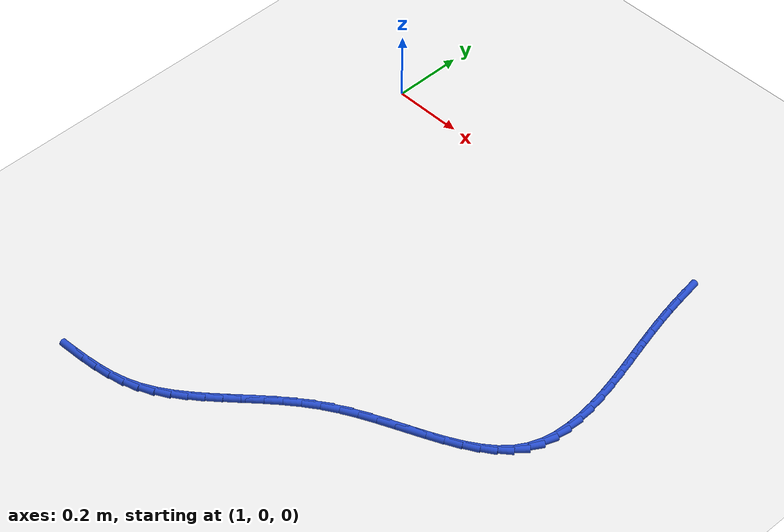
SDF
<sdf version="1.6">
 <world name="default">
  <model name="ground_plane">
   <static>1</static>
   <link name="link">
    <collision name="collision">
     <geometry><plane><normal>0 0 1</normal><size>100 100</size></plane></geometry>
     <surface><friction><ode><mu>100</mu><mu2>50</mu2></ode></friction></surface>
    </collision>
    <visual name="visual">
     <cast_shadows>0</cast_shadows>
     <geometry><plane><normal>0 0 1</normal><size>100 100</size></plane></geometry>
     <material>
      <script><uri>file://media/materials/scripts/gazebo.material</uri><name>Gazebo/WhiteGlow</name></script>
     </material>
    </visual>
   </link>
  </model>
  <model name="line">
   <link name="link_85">
    <pose>2.0417358698839037 -0.013176757162275163 0.01 0 1.57 -1.4171654546028096</pose>
    <collision name="collision">
     <geometry><cylinder><radius>0.01</radius><length>0.08</length></cylinder></geometry>
    </collision>
    <visual name="visual">
     <material>
      <script><name>Gazebo/Blue</name><uri>file://media/materials/scripts/gazebo.material</uri></script>
     </material>
     <geometry><cylinder><radius>0.01</radius><length>0.08</length></cylinder></geometry>
    </visual>
   </link>
   <link name="link_86">
    <pose>2.0482554024763844 -0.055278707813087594 0.01 0 1.57 -1.3909854404566688</pose>
    <collision name="collision">
     <geometry><cylinder><radius>0.01</radius><length>0.08</length></cylinder></geometry>
    </collision>
    <visual name="visual">
     <material>
      <script><name>Gazebo/Blue</name><uri>file://media/materials/scripts/gazebo.material</uri></script>
     </material>
     <geometry><cylinder><radius>0.01</radius><length>0.08</length></cylinder></geometry>
    </visual>
   </link>
   <link name="link_87">
    <pose>2.055981872725024 -0.09778458570475346 0.01 0 1.57 -1.3674098730765814</pose>
    <collision name="collision">
     <geometry><cylinder><radius>0.01</radius><length>0.08</length></cylinder></geometry>
    </collision>
    <visual name="visual">
     <material>
      <script><name>Gazebo/Blue</name><uri>file://media/materials/scripts/gazebo.material</uri></script>
     </material>
     <geometry><cylinder><radius>0.01</radius><length>0.08</length></cylinder></geometry>
    </visual>
   </link>
   <link name="link_88">
    <pose>2.064905274543462 -0.14105206511298232 0.01 0 1.57 -1.3468393014528395</pose>
    <collision name="collision">
     <geometry><cylinder><radius>0.01</radius><length>0.08</length></cylinder></geometry>
    </collision>
    <visual name="visual">
     <material>
      <script><name>Gazebo/Blue</name><uri>file://media/materials/scripts/gazebo.material</uri></script>
     </material>
     <geometry><cylinder><radius>0.01</radius><length>0.08</length></cylinder></geometry>
    </visual>
   </link>
   <link name="link_89">
    <pose>2.075015601845341 -0.1854388203134849 0.01 0 1.57 -1.3303079527624582</pose>
    <collision name="collision">
     <geometry><cylinder><radius>0.01</radius><length>0.08</length></cylinder></geometry>
    </collision>
    <visual name="visual">
     <material>
      <script><name>Gazebo/Blue</name><uri>file://media/materials/scripts/gazebo.material</uri></script>
     </material>
     <geometry><cylinder><radius>0.01</radius><length>0.08</length></cylinder></geometry>
    </visual>
   </link>
   <link name="link_90">
    <pose>2.0862450507410677 -0.23122949877129095 0.01 0 1.57 -1.3234082910188119</pose>
    <collision name="collision">
     <geometry><cylinder><radius>0.01</radius><length>0.08</length></cylinder></geometry>
    </collision>
    <visual name="visual">
     <material>
      <script><name>Gazebo/Blue</name><uri>file://media/materials/scripts/gazebo.material</uri></script>
     </material>
     <geometry><cylinder><radius>0.01</radius><length>0.08</length></cylinder></geometry>
    </visual>
   </link>
   <link name="link_91">
    <pose>2.098100880559092 -0.27817184557468294 0.01 0 1.57 -1.3278091539093344</pose>
    <collision name="collision">
     <geometry><cylinder><radius>0.01</radius><length>0.08</length></cylinder></geometry>
    </collision>
    <visual name="visual">
     <material>
      <script><name>Gazebo/Blue</name><uri>file://media/materials/scripts/gazebo.material</uri></script>
     </material>
     <geometry><cylinder><radius>0.01</radius><length>0.08</length></cylinder></geometry>
    </visual>
   </link>
   <link name="link_92">
    <pose>2.1099007599251283 -0.32577406030016526 0.01 0 1.57 -1.3432609018694313</pose>
    <collision name="collision">
     <geometry><cylinder><radius>0.01</radius><length>0.08</length></cylinder></geometry>
    </collision>
    <visual name="visual">
     <material>
      <script><name>Gazebo/Blue</name><uri>file://media/materials/scripts/gazebo.material</uri></script>
     </material>
     <geometry><cylinder><radius>0.01</radius><length>0.08</length></cylinder></geometry>
    </visual>
   </link>
   <link name="link_93">
    <pose>2.1209614815974667 -0.3735432358765666 0.01 0 1.57 -1.370368405681729</pose>
    <collision name="collision">
     <geometry><cylinder><radius>0.01</radius><length>0.08</length></cylinder></geometry>
    </collision>
    <visual name="visual">
     <material>
      <script><name>Gazebo/Blue</name><uri>file://media/materials/scripts/gazebo.material</uri></script>
     </material>
     <geometry><cylinder><radius>0.01</radius><length>0.08</length></cylinder></geometry>
    </visual>
   </link>
   <link name="link_94">
    <pose>2.1305998383343985 -0.4209864652327167 0.01 0 1.57 -1.410617232083481</pose>
    <collision name="collision">
     <geometry><cylinder><radius>0.01</radius><length>0.08</length></cylinder></geometry>
    </collision>
    <visual name="visual">
     <material>
      <script><name>Gazebo/Blue</name><uri>file://media/materials/scripts/gazebo.material</uri></script>
     </material>
     <geometry><cylinder><radius>0.01</radius><length>0.08</length></cylinder></geometry>
    </visual>
   </link>
   <link name="link_95">
    <pose>2.1381326228942132 -0.46761084129744257 0.01 0 1.57 -1.4664813344148746</pose>
    <collision name="collision">
     <geometry><cylinder><radius>0.01</radius><length>0.08</length></cylinder></geometry>
    </collision>
    <visual name="visual">
     <material>
      <script><name>Gazebo/Blue</name><uri>file://media/materials/scripts/gazebo.material</uri></script>
     </material>
     <geometry><cylinder><radius>0.01</radius><length>0.08</length></cylinder></geometry>
    </visual>
   </link>
   <link name="link_96">
    <pose>2.1428766280352023 -0.5129234569995738 0.01 0 1.57 -1.54156819058583</pose>
    <collision name="collision">
     <geometry><cylinder><radius>0.01</radius><length>0.08</length></cylinder></geometry>
    </collision>
    <visual name="visual">
     <material>
      <script><name>Gazebo/Blue</name><uri>file://media/materials/scripts/gazebo.material</uri></script>
     </material>
     <geometry><cylinder><radius>0.01</radius><length>0.08</length></cylinder></geometry>
    </visual>
   </link>
   <link name="link_97">
    <pose>2.144148646515654 -0.5564314052679391 0.01 0 1.57 1.5009477716565451</pose>
    <collision name="collision">
     <geometry><cylinder><radius>0.01</radius><length>0.08</length></cylinder></geometry>
    </collision>
    <visual name="visual">
     <material>
      <script><name>Gazebo/Blue</name><uri>file://media/materials/scripts/gazebo.material</uri></script>
     </material>
     <geometry><cylinder><radius>0.01</radius><length>0.08</length></cylinder></geometry>
    </visual>
   </link>
   <link name="link_98">
    <pose>2.14126547109386 -0.5976417790313673 0.01 0 1.57 1.3724599721803166</pose>
    <collision name="collision">
     <geometry><cylinder><radius>0.01</radius><length>0.08</length></cylinder></geometry>
    </collision>
    <visual name="visual">
     <material>
      <script><name>Gazebo/Blue</name><uri>file://media/materials/scripts/gazebo.material</uri></script>
     </material>
     <geometry><cylinder><radius>0.01</radius><length>0.08</length></cylinder></geometry>
    </visual>
   </link>
   <link name="link_99">
    <pose>2.1335438945281116 -0.636061671218688 0.01 0 1.57 1.210355044194364</pose>
    <collision name="collision">
     <geometry><cylinder><radius>0.01</radius><length>0.08</length></cylinder></geometry>
    </collision>
    <visual name="visual">
     <material>
      <script><name>Gazebo/Blue</name><uri>file://media/materials/scripts/gazebo.material</uri></script>
     </material>
     <geometry><cylinder><radius>0.01</radius><length>0.08</length></cylinder></geometry>
    </visual>
   </link>
   <link name="link_100">
    <pose>2.1203007095766977 -0.6711981747587286 0.01 0 1.57 1.0178724397566041</pose>
    <collision name="collision">
     <geometry><cylinder><radius>0.01</radius><length>0.08</length></cylinder></geometry>
    </collision>
    <visual name="visual">
     <material>
      <script><name>Gazebo/Blue</name><uri>file://media/materials/scripts/gazebo.material</uri></script>
     </material>
     <geometry><cylinder><radius>0.01</radius><length>0.08</length></cylinder></geometry>
    </visual>
   </link>
   <link name="link_101">
    <pose>2.1009178081854722 -0.7026060323657657 0.01 0 1.57 0.8330869957607425</pose>
    <collision name="collision">
     <geometry><cylinder><radius>0.01</radius><length>0.08</length></cylinder></geometry>
    </collision>
    <visual name="visual">
     <material>
      <script><name>Gazebo/Blue</name><uri>file://media/materials/scripts/gazebo.material</uri></script>
     </material>
     <geometry><cylinder><radius>0.01</radius><length>0.08</length></cylinder></geometry>
    </visual>
   </link>
   <link name="link_102">
    <pose>2.0756104852558335 -0.7304500016176918 0.01 0 1.57 0.6849679642949923</pose>
    <collision name="collision">
     <geometry><cylinder><radius>0.01</radius><length>0.08</length></cylinder></geometry>
    </collision>
    <visual name="visual">
     <material>
      <script><name>Gazebo/Blue</name><uri>file://media/materials/scripts/gazebo.material</uri></script>
     </material>
     <geometry><cylinder><radius>0.01</radius><length>0.08</length></cylinder></geometry>
    </visual>
   </link>
   <link name="link_103">
    <pose>2.0451704880897026 -0.7553167782798591 0.01 0 1.57 0.5740381628270436</pose>
    <collision name="collision">
     <geometry><cylinder><radius>0.01</radius><length>0.08</length></cylinder></geometry>
    </collision>
    <visual name="visual">
     <material>
      <script><name>Gazebo/Blue</name><uri>file://media/materials/scripts/gazebo.material</uri></script>
     </material>
     <geometry><cylinder><radius>0.01</radius><length>0.08</length></cylinder></geometry>
    </visual>
   </link>
   <link name="link_104">
    <pose>2.010401073939839 -0.7778014829030674 0.01 0 1.57 0.4954999983153783</pose>
    <collision name="collision">
     <geometry><cylinder><radius>0.01</radius><length>0.08</length></cylinder></geometry>
    </collision>
    <visual name="visual">
     <material>
      <script><name>Gazebo/Blue</name><uri>file://media/materials/scripts/gazebo.material</uri></script>
     </material>
     <geometry><cylinder><radius>0.01</radius><length>0.08</length></cylinder></geometry>
    </visual>
   </link>
   <link name="link_105">
    <pose>1.972105500059005 -0.7984992360381156 0.01 0 1.57 0.44388875521024784</pose>
    <collision name="collision">
     <geometry><cylinder><radius>0.01</radius><length>0.08</length></cylinder></geometry>
    </collision>
    <visual name="visual">
     <material>
      <script><name>Gazebo/Blue</name><uri>file://media/materials/scripts/gazebo.material</uri></script>
     </material>
     <geometry><cylinder><radius>0.01</radius><length>0.08</length></cylinder></geometry>
    </visual>
   </link>
   <link name="link_106">
    <pose>1.931087023699962 -0.818005158235804 0.01 0 1.57 0.4148275710094729</pose>
    <collision name="collision">
     <geometry><cylinder><radius>0.01</radius><length>0.08</length></cylinder></geometry>
    </collision>
    <visual name="visual">
     <material>
      <script><name>Gazebo/Blue</name><uri>file://media/materials/scripts/gazebo.material</uri></script>
     </material>
     <geometry><cylinder><radius>0.01</radius><length>0.08</length></cylinder></geometry>
    </visual>
   </link>
   <link name="link_107">
    <pose>1.88814890211547 -0.8369143700469324 0.01 0 1.57 0.40541170640071145</pose>
    <collision name="collision">
     <geometry><cylinder><radius>0.01</radius><length>0.08</length></cylinder></geometry>
    </collision>
    <visual name="visual">
     <material>
      <script><name>Gazebo/Blue</name><uri>file://media/materials/scripts/gazebo.material</uri></script>
     </material>
     <geometry><cylinder><radius>0.01</radius><length>0.08</length></cylinder></geometry>
    </visual>
   </link>
   <link name="link_108">
    <pose>1.8440943925582902 -0.8558219920223002 0.01 0 1.57 0.4141176441495928</pose>
    <collision name="collision">
     <geometry><cylinder><radius>0.01</radius><length>0.08</length></cylinder></geometry>
    </collision>
    <visual name="visual">
     <material>
      <script><name>Gazebo/Blue</name><uri>file://media/materials/scripts/gazebo.material</uri></script>
     </material>
     <geometry><cylinder><radius>0.01</radius><length>0.08</length></cylinder></geometry>
    </visual>
   </link>
   <link name="link_109">
    <pose>1.7997267522811833 -0.8753231447127077 0.01 0 1.57 0.4406177958118638</pose>
    <collision name="collision">
     <geometry><cylinder><radius>0.01</radius><length>0.08</length></cylinder></geometry>
    </collision>
    <visual name="visual">
     <material>
      <script><name>Gazebo/Blue</name><uri>file://media/materials/scripts/gazebo.material</uri></script>
     </material>
     <geometry><cylinder><radius>0.01</radius><length>0.08</length></cylinder></geometry>
    </visual>
   </link>
   <link name="link_110">
    <pose>1.7558492385369102 -0.896012948668955 0.01 0 1.57 0.4855967153814154</pose>
    <collision name="collision">
     <geometry><cylinder><radius>0.01</radius><length>0.08</length></cylinder></geometry>
    </collision>
    <visual name="visual">
     <material>
      <script><name>Gazebo/Blue</name><uri>file://media/materials/scripts/gazebo.material</uri></script>
     </material>
     <geometry><cylinder><radius>0.01</radius><length>0.08</length></cylinder></geometry>
    </visual>
   </link>
   <link name="link_111">
    <pose>1.7132651085782327 -0.9184865244418406 0.01 0 1.57 0.5500669367995336</pose>
    <collision name="collision">
     <geometry><cylinder><radius>0.01</radius><length>0.08</length></cylinder></geometry>
    </collision>
    <visual name="visual">
     <material>
      <script><name>Gazebo/Blue</name><uri>file://media/materials/scripts/gazebo.material</uri></script>
     </material>
     <geometry><cylinder><radius>0.01</radius><length>0.08</length></cylinder></geometry>
    </visual>
   </link>
   <link name="link_112">
    <pose>1.672761932310483 -0.9433229633894098 0.01 0 1.57 0.6197786513036835</pose>
    <collision name="collision">
     <geometry><cylinder><radius>0.01</radius><length>0.08</length></cylinder></geometry>
    </collision>
    <visual name="visual">
     <material>
      <script><name>Gazebo/Blue</name><uri>file://media/materials/scripts/gazebo.material</uri></script>
     </material>
     <geometry><cylinder><radius>0.01</radius><length>0.08</length></cylinder></geometry>
    </visual>
   </link>
   <link name="link_113">
    <pose>1.6345952592707198 -0.9705577431662689 0.01 0 1.57 0.6751821683393703</pose>
    <collision name="collision">
     <geometry><cylinder><radius>0.01</radius><length>0.08</length></cylinder></geometry>
    </collision>
    <visual name="visual">
     <material>
      <script><name>Gazebo/Blue</name><uri>file://media/materials/scripts/gazebo.material</uri></script>
     </material>
     <geometry><cylinder><radius>0.01</radius><length>0.08</length></cylinder></geometry>
    </visual>
   </link>
   <link name="link_114">
    <pose>1.5983714532504518 -0.9995630091781038 0.01 0 1.57 0.7144553193329248</pose>
    <collision name="collision">
     <geometry><cylinder><radius>0.01</radius><length>0.08</length></cylinder></geometry>
    </collision>
    <visual name="visual">
     <material>
      <script><name>Gazebo/Blue</name><uri>file://media/materials/scripts/gazebo.material</uri></script>
     </material>
     <geometry><cylinder><radius>0.01</radius><length>0.08</length></cylinder></geometry>
    </visual>
   </link>
   <link name="link_115">
    <pose>1.5636574662270302 -1.029670636187727 0.01 0 1.57 0.7372055651540236</pose>
    <collision name="collision">
     <geometry><cylinder><radius>0.01</radius><length>0.08</length></cylinder></geometry>
    </collision>
    <visual name="visual">
     <material>
      <script><name>Gazebo/Blue</name><uri>file://media/materials/scripts/gazebo.material</uri></script>
     </material>
     <geometry><cylinder><radius>0.01</radius><length>0.08</length></cylinder></geometry>
    </visual>
   </link>
   <link name="link_116">
    <pose>1.5300202501778095 -1.0602124989579498 0.01 0 1.57 0.7429992974068602</pose>
    <collision name="collision">
     <geometry><cylinder><radius>0.01</radius><length>0.08</length></cylinder></geometry>
    </collision>
    <visual name="visual">
     <material>
      <script><name>Gazebo/Blue</name><uri>file://media/materials/scripts/gazebo.material</uri></script>
     </material>
     <geometry><cylinder><radius>0.01</radius><length>0.08</length></cylinder></geometry>
    </visual>
   </link>
   <link name="link_117">
    <pose>1.4970267570801417 -1.0905204722515842 0.01 0 1.57 0.7311512923735799</pose>
    <collision name="collision">
     <geometry><cylinder><radius>0.01</radius><length>0.08</length></cylinder></geometry>
    </collision>
    <visual name="visual">
     <material>
      <script><name>Gazebo/Blue</name><uri>file://media/materials/scripts/gazebo.material</uri></script>
     </material>
     <geometry><cylinder><radius>0.01</radius><length>0.08</length></cylinder></geometry>
    </visual>
   </link>
   <link name="link_118">
    <pose>1.4642439389113795 -1.1199264308314425 0.01 0 1.57 0.7006364730964936</pose>
    <collision name="collision">
     <geometry><cylinder><radius>0.01</radius><length>0.08</length></cylinder></geometry>
    </collision>
    <visual name="visual">
     <material>
      <script><name>Gazebo/Blue</name><uri>file://media/materials/scripts/gazebo.material</uri></script>
     </material>
     <geometry><cylinder><radius>0.01</radius><length>0.08</length></cylinder></geometry>
    </visual>
   </link>
   <link name="link_119">
    <pose>1.4312387476488757 -1.1477622494603377 0.01 0 1.57 0.6501620450887111</pose>
    <collision name="collision">
     <geometry><cylinder><radius>0.01</radius><length>0.08</length></cylinder></geometry>
    </collision>
    <visual name="visual">
     <material>
      <script><name>Gazebo/Blue</name><uri>file://media/materials/scripts/gazebo.material</uri></script>
     </material>
     <geometry><cylinder><radius>0.01</radius><length>0.08</length></cylinder></geometry>
    </visual>
   </link>
   <link name="link_120">
    <pose>1.3975781352699823 -1.173359802901081 0.01 0 1.57 0.5784815514272116</pose>
    <collision name="collision">
     <geometry><cylinder><radius>0.01</radius><length>0.08</length></cylinder></geometry>
    </collision>
    <visual name="visual">
     <material>
      <script><name>Gazebo/Blue</name><uri>file://media/materials/scripts/gazebo.material</uri></script>
     </material>
     <geometry><cylinder><radius>0.01</radius><length>0.08</length></cylinder></geometry>
    </visual>
   </link>
   <link name="link_121">
    <pose>1.3628290537520524 -1.196050965916485 0.01 0 1.57 0.4850576272099569</pose>
    <collision name="collision">
     <geometry><cylinder><radius>0.01</radius><length>0.08</length></cylinder></geometry>
    </collision>
    <visual name="visual">
     <material>
      <script><name>Gazebo/Blue</name><uri>file://media/materials/scripts/gazebo.material</uri></script>
     </material>
     <geometry><cylinder><radius>0.01</radius><length>0.08</length></cylinder></geometry>
    </visual>
   </link>
   <link name="link_122">
    <pose>1.3265584550724394 -1.2151676132693616 0.01 0 1.57 0.3715131874396785</pose>
    <collision name="collision">
     <geometry><cylinder><radius>0.01</radius><length>0.08</length></cylinder></geometry>
    </collision>
    <visual name="visual">
     <material>
      <script><name>Gazebo/Blue</name><uri>file://media/materials/scripts/gazebo.material</uri></script>
     </material>
     <geometry><cylinder><radius>0.01</radius><length>0.08</length></cylinder></geometry>
    </visual>
   </link>
   <link name="link_123">
    <pose>1.288340730824393 -1.2300574302360954 0.01 0 1.57 0.2580229467826583</pose>
    <collision name="collision">
     <geometry><cylinder><radius>0.01</radius><length>0.08</length></cylinder></geometry>
    </collision>
    <visual name="visual">
     <material>
      <script><name>Gazebo/Blue</name><uri>file://media/materials/scripts/gazebo.material</uri></script>
     </material>
     <geometry><cylinder><radius>0.01</radius><length>0.08</length></cylinder></geometry>
    </visual>
   </link>
   <link name="link_124">
    <pose>1.2480438498887876 -1.2406920063045623 0.01 0 1.57 0.16852156715246827</pose>
    <collision name="collision">
     <geometry><cylinder><radius>0.01</radius><length>0.08</length></cylinder></geometry>
    </collision>
    <visual name="visual">
     <material>
      <script><name>Gazebo/Blue</name><uri>file://media/materials/scripts/gazebo.material</uri></script>
     </material>
     <geometry><cylinder><radius>0.01</radius><length>0.08</length></cylinder></geometry>
    </visual>
   </link>
   <link name="link_125">
    <pose>1.2059196914063843 -1.2478588088867035 0.01 0 1.57 0.10361638907780045</pose>
    <collision name="collision">
     <geometry><cylinder><radius>0.01</radius><length>0.08</length></cylinder></geometry>
    </collision>
    <visual name="visual">
     <material>
      <script><name>Gazebo/Blue</name><uri>file://media/materials/scripts/gazebo.material</uri></script>
     </material>
     <geometry><cylinder><radius>0.01</radius><length>0.08</length></cylinder></geometry>
    </visual>
   </link>
   <link name="link_126">
    <pose>1.1622460492959208 -1.2524003789297815 0.01 0 1.57 0.061306060497294486</pose>
    <collision name="collision">
     <geometry><cylinder><radius>0.01</radius><length>0.08</length></cylinder></geometry>
    </collision>
    <visual name="visual">
     <material>
      <script><name>Gazebo/Blue</name><uri>file://media/materials/scripts/gazebo.material</uri></script>
     </material>
     <geometry><cylinder><radius>0.01</radius><length>0.08</length></cylinder></geometry>
    </visual>
   </link>
   <link name="link_127">
    <pose>1.1173007174761365 -1.2551592573810586 0.01 0 1.57 0.03956920033389875</pose>
    <collision name="collision">
     <geometry><cylinder><radius>0.01</radius><length>0.08</length></cylinder></geometry>
    </collision>
    <visual name="visual">
     <material>
      <script><name>Gazebo/Blue</name><uri>file://media/materials/scripts/gazebo.material</uri></script>
     </material>
     <geometry><cylinder><radius>0.01</radius><length>0.08</length></cylinder></geometry>
    </visual>
   </link>
  </model>
 </world>
</sdf>
